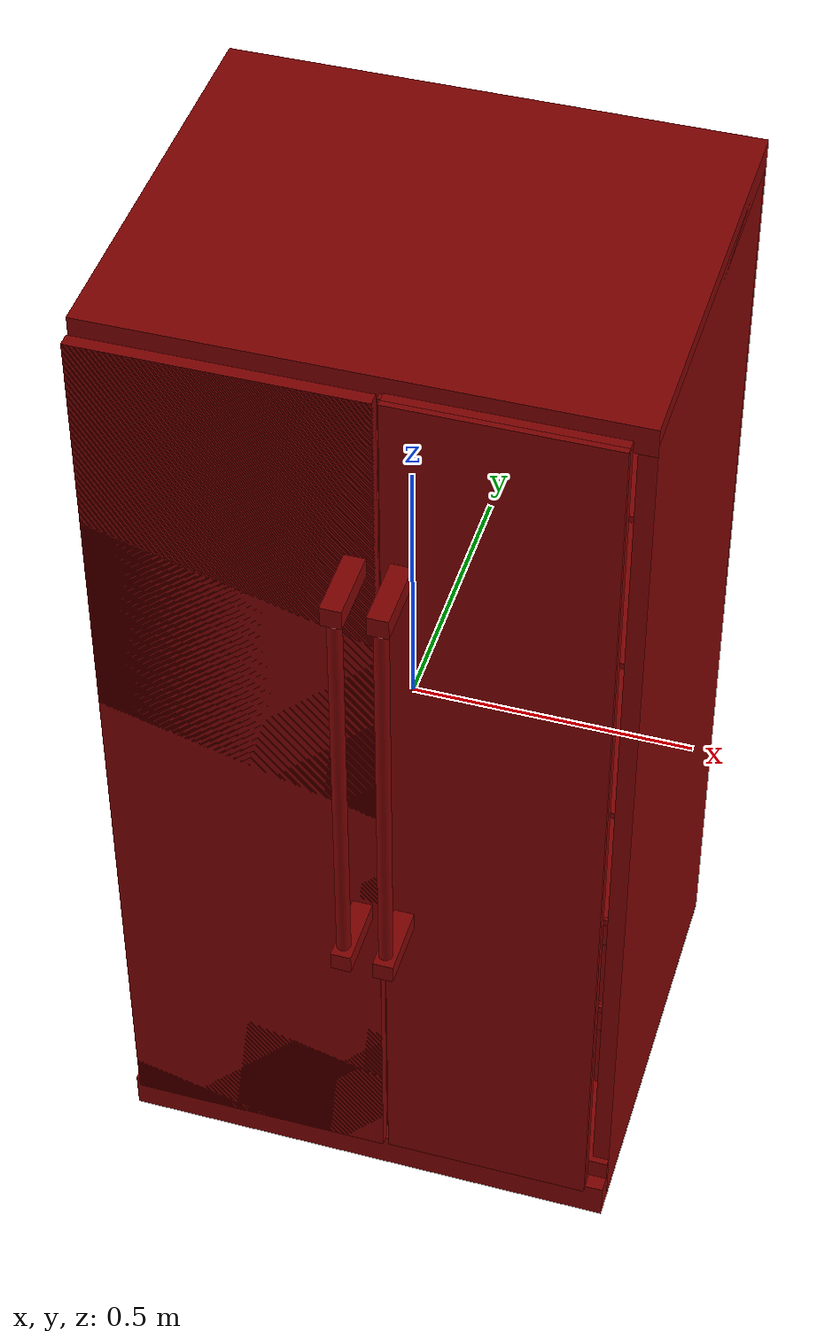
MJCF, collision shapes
<?xml version='1.0' encoding='UTF-8'?>
<mujoco model="model">
  <option timestep="0.002" gravity="0.0 0.0 -9.81"/>
  <compiler angle="radian"/>
  <asset>
    <mesh file="visuals/freezer_door.obj" name="freezer_door_vis"/>
    <mesh file="visuals/freezer_drawer0.obj" name="freezer_drawer0_vis"/>
    <mesh file="visuals/freezer_drawer1.obj" name="freezer_drawer1_vis"/>
    <mesh file="visuals/fridge_door.obj" name="fridge_door_vis"/>
    <mesh file="visuals/fridge_door_Clear.obj" name="fridge_door_Clear_vis"/>
    <mesh file="visuals/Body001.obj" name="Body001_vis"/>
    <mesh file="visuals/Body001_Clear.obj" name="Body001_Clear_vis"/>
    <mesh file="visuals/Body002.obj" name="Body002_vis"/>
    <texture file="visuals/T_BC001.png" name="Body001_material" type="2d"/>
    <material name="Body001_material" rgba="1 1 1 1.0" texture="Body001_material" shininess="0.4291412830352783" specular="2"/>
    <texture file="visuals/T_BC001.png" name="freezer_door_material" type="2d"/>
    <material name="freezer_door_material" rgba="1 1 1 1.0" texture="freezer_door_material" shininess="0.4291412830352783" specular="2"/>
    <texture file="visuals/T_BC001.png" name="freezer_drawer0_material" type="2d"/>
    <material name="freezer_drawer0_material" rgba="1 1 1 1.0" texture="freezer_drawer0_material" shininess="0.4291412830352783" specular="0.3103448502657381"/>
    <texture file="visuals/T_BC001.png" name="freezer_drawer1_material" type="2d"/>
    <material name="freezer_drawer1_material" rgba="1 1 1 1.0" texture="freezer_drawer1_material" shininess="0.4291412830352783" specular="0.3103448502657381"/>
    <texture file="visuals/T_BC001.png" name="fridge_door_material" type="2d"/>
    <material name="fridge_door_material" rgba="1 1 1 1.0" texture="fridge_door_material" shininess="0.4291412830352783" specular="2"/>
    <material name="fridge_door_Clear_material" rgba="0.5 0.5 0.5 0.7409640550613403" shininess="0.4472135901451111" specular="0.3103448502657381"/>
    <material name="Body001_Clear_material" rgba="0.5 0.5 0.5 0.7409640550613403" shininess="0.4472135901451111" specular="0.3103448502657381"/>
    <texture file="visuals/T_BC001.png" name="Body002_material" type="2d"/>
    <material name="Body002_material" rgba="1 1 1 1.0" texture="Body002_material" shininess="0.4291412830352783" specular="0.3103448502657381"/>
  </asset>
  <default>
    <default class="visual">
      <geom conaffinity="0" contype="0" group="1" type="mesh"/>
    </default>
    <default class="collision">
      <geom group="0" rgba="0.5 0 0 0.5"/>
    </default>
    <default class="spawn">
      <geom group="0" rgba="1 1 1 0.5" contype="0" conaffinity="0"/>
      <site group="0" rgba="1 1 1 0.5"/>
    </default>
    <default class="region">
      <geom group="1" conaffinity="0" contype="0" rgba="0 1 0 0"/>
    </default>
  </default>
  <worldbody>
    <body>
      <body name="object">
        <geom mesh="Body001_vis" type="mesh" solimp="0.998 0.998 0.001" solref="0.001 1" friction="0.95 0.3 0.1" class="visual" material="Body001_material"/>
        <geom class="collision" type="box" pos="-3.14321368932724e-09 0.4564071595668793 -0.009512280113995075" size="0.4595121145248413 0.01243121363222599 0.890364944934845" quat="1.0 0.0 0.0 0.0"/>
        <geom class="collision" type="box" pos="-0.44824686646461487 0.09380289912223816 -0.018721602857112885" size="0.011265265755355358 0.37500715255737305 0.9253760576248169" quat="1.0 0.0 0.0 0.0"/>
        <geom class="collision" type="box" pos="0.4442569613456726 0.09380240738391876 -0.01872161403298378" size="0.015255171805620193 0.3750080466270447 0.9253787994384766" quat="1.0 0.0 0.0 0.0"/>
        <geom class="collision" type="box" pos="-3.14321368932724e-09 0.08787217736244202 -0.8941758275032043" size="0.4595121145248413 0.38093873858451843 0.05846454203128815" quat="1.0 0.0 0.0 0.0"/>
        <geom class="collision" type="box" pos="-3.14321368932724e-09 0.02809373289346695 -0.9153845310211182" size="0.4595121145248413 0.3492131531238556 0.03692387044429779" quat="1.0 0.0 0.0 0.0"/>
        <geom class="collision" type="box" pos="0.07116194069385529 0.08771630376577377 -0.018721602857112885" size="0.0370812825858593 0.3810955286026001 0.9253871440887451" quat="1.0 0.0 0.0 0.0"/>
        <geom class="collision" type="box" pos="-3.14321368932724e-09 0.09380055218935013 0.9125056266784668" size="0.4595121145248413 0.37501177191734314 0.025864657014608383" quat="1.0 0.0 0.0 0.0"/>
        <geom class="collision" type="box" pos="0.2683153450489044 0.16216318309307098 0.22448477149009705" size="0.1583569496870041 0.22307993471622467 0.0060075754299759865" quat="1.0 0.0 0.0 0.0"/>
        <geom class="collision" type="box" pos="-0.20137891173362732 0.1622304469347 0.5440387725830078" size="0.23340408504009247 0.22307993471622467 0.0060075754299759865" quat="1.0 0.0 0.0 0.0"/>
        <geom class="collision" type="box" pos="-0.20145899057388306 0.15250565111637115 0.22739364206790924" size="0.23340408504009247 0.22307993471622467 0.0060075754299759865" quat="1.0 0.0 0.0 0.0"/>
        <geom class="collision" type="box" pos="0.2683153450489044 0.16216318309307098 0.553250789642334" size="0.1583569496870041 0.22307993471622467 0.006352466065436602" quat="1.0 0.0 0.0 0.0"/>
        <geom class="collision" type="box" pos="0.2683153450489044 0.16216318309307098 -0.14524586498737335" size="0.1583569496870041 0.22307993471622467 0.006224427837878466" quat="1.0 0.0 0.0 0.0"/>
        <geom class="collision" type="box" pos="-0.20145899057388306 0.16216318309307098 -0.14820696413516998" size="0.23340408504009247 0.22307993471622467 0.0060075754299759865" quat="1.0 0.0 0.0 0.0"/>
        <geom class="collision" type="box" pos="-0.20145899057388306 0.16216318309307098 -0.4992179572582245" size="0.23340408504009247 0.22307993471622467 0.0060075754299759865" quat="1.0 0.0 0.0 0.0"/>
        <geom class="collision" type="box" pos="-0.4261056184768677 0.15014323592185974 0.5332607626914978" size="0.009552940726280212 0.2150000035762787 0.005428791046142578" quat="1.0 0.0 0.0 0.0"/>
        <geom class="collision" type="box" pos="-0.4261056184768677 0.15014323592185974 0.2121192365884781" size="0.009552940726280212 0.2150000035762787 0.005428791046142578" quat="1.0 0.0 0.0 0.0"/>
        <geom class="collision" type="box" pos="-0.4261056184768677 0.15014323592185974 -0.15938958525657654" size="0.009552940726280212 0.2150000035762787 0.005428791046142578" quat="1.0 0.0 0.0 0.0"/>
        <geom class="collision" type="box" pos="-0.4261056184768677 0.15014323592185974 -0.5178503394126892" size="0.009552940726280212 0.2150000035762787 0.005428791046142578" quat="1.0 0.0 0.0 0.0"/>
        <geom class="collision" type="box" pos="0.023374024778604507 0.15014323592185974 0.5332607626914978" size="0.009552940726280212 0.2150000035762787 0.005428791046142578" quat="1.0 0.0 0.0 0.0"/>
        <geom class="collision" type="box" pos="0.023374024778604507 0.15014323592185974 -0.5178503394126892" size="0.009552940726280212 0.2150000035762787 0.005428791046142578" quat="1.0 0.0 0.0 0.0"/>
        <geom class="collision" type="box" pos="0.023374024778604507 0.15014323592185974 -0.15938958525657654" size="0.009552940726280212 0.2150000035762787 0.005428791046142578" quat="1.0 0.0 0.0 0.0"/>
        <geom class="collision" type="box" pos="0.023374024778604507 0.15014323592185974 0.2121192365884781" size="0.009552940726280212 0.2150000035762787 0.005428791046142578" quat="1.0 0.0 0.0 0.0"/>
        <geom class="collision" type="box" pos="0.1187741607427597 0.15014323592185974 0.2121192365884781" size="0.009552940726280212 0.2150000035762787 0.005428791046142578" quat="1.0 0.0 0.0 0.0"/>
        <geom class="collision" type="box" pos="0.11876542866230011 0.15014323592185974 -0.15938958525657654" size="0.009552940726280212 0.2150000035762787 0.005428791046142578" quat="1.0 0.0 0.0 0.0"/>
        <geom class="collision" type="box" pos="0.11872856318950653 0.15014323592185974 0.539370596408844" size="0.009552940726280212 0.2150000035762787 0.005428791046142578" quat="1.0 0.0 0.0 0.0"/>
        <geom class="collision" type="box" pos="0.11876542866230011 0.15014323592185974 -0.33065348863601685" size="0.009552940726280212 0.2150000035762787 0.005428791046142578" quat="1.0 0.0 0.0 0.0"/>
        <geom class="collision" type="box" pos="0.14763441681861877 0.15014323592185974 -0.6021625399589539" size="0.03842192888259888 0.2150000035762787 0.005190134048461914" quat="1.0 0.0 0.0 0.0"/>
        <geom class="collision" type="box" pos="0.3958284854888916 0.15014323592185974 -0.6021625399589539" size="0.03842192888259888 0.2150000035762787 0.005190134048461914" quat="1.0 0.0 0.0 0.0"/>
        <geom class="collision" type="box" pos="0.41766905784606934 0.15014323592185974 0.539370596408844" size="0.009552940726280212 0.2150000035762787 0.005428791046142578" quat="1.0 0.0 0.0 0.0"/>
        <geom class="collision" type="box" pos="0.4177058935165405 0.15014323592185974 -0.33065348863601685" size="0.009552940726280212 0.2150000035762787 0.005428791046142578" quat="1.0 0.0 0.0 0.0"/>
        <geom class="collision" type="box" pos="0.4177058935165405 0.15014323592185974 -0.15938958525657654" size="0.009552940726280212 0.2150000035762787 0.005428791046142578" quat="1.0 0.0 0.0 0.0"/>
        <geom class="collision" type="box" pos="0.4177146553993225 0.15014323592185974 0.2121192365884781" size="0.009552940726280212 0.2150000035762787 0.005428791046142578" quat="1.0 0.0 0.0 0.0"/>
        <body name="freezer_door">
          <joint axis="0.0 0.0 1.0" pos="0.43610501289367676 -0.3223499357700348 0.04106709361076355" limited="true" name="freezer_door_joint" range="0.0 1.5707963267948966" type="hinge" damping="1" frictionloss="1" armature=".01" stiffness="0.05"/>
          <geom mesh="freezer_door_vis" type="mesh" solimp="0.998 0.998 0.001" solref="0.001 1" friction="0.95 0.3 0.1" class="visual" material="freezer_door_material"/>
          <geom class="collision" type="box" pos="0.2401685267686844 -0.33090940117836 0.03962339088320732" size="0.18864116072654724 0.013930177316069603 0.9010488390922546" quat="1.0 0.0 0.0 0.0"/>
          <geom class="collision" type="cylinder" pos="0.08608739823102951 -0.4513147473335266 0.20588915050029755" size="0.012440330348908901 0.38117796182632446" quat="1.0 0.0 0.0 0.0" name="freezer_door_handle_main"/>
          <geom class="collision" type="box" pos="0.0861477330327034 -0.4070349335670471 0.6107343435287476" size="0.017865100875496864 0.06237119436264038 0.017993342131376266" quat="1.0 0.0 0.0 0.0" name="freezer_door_handle_1"/>
          <geom class="collision" type="box" pos="0.0861477330327034 -0.4070349335670471 -0.20125801861286163" size="0.017865072935819626 0.062371090054512024 0.01799328811466694" quat="1.0 0.0 0.0 0.0" name="freezer_door_handle_2"/>
          <geom class="collision" type="box" pos="0.26309067010879517 -0.29323944449424744 0.0657227635383606" size="0.13131524622440338 0.030547482892870903 0.14166350662708282" quat="1.0 0.0 0.0 0.0"/>
          <geom class="collision" type="box" pos="0.2401685267686844 -0.33941650390625 0.03962339088320732" size="0.18864376842975616 0.005423270631581545 0.9010597467422485" quat="1.0 0.0 0.0 0.0" name="freezer_door_main"/>
        </body>
        <body name="freezer_drawer0">
          <geom class="region" name="reg_freezer_drawer0" type="box" pos="0.2571055144071579 0.12074371054768562 -0.7176551520824432" size="0.12860300934314728 0.21318479797244072 0.09834752774238587"/>
          <joint axis="0.0 -1.0 0.0" pos="0.25697803497314453 0.1185639500617981 -0.7232652902603149" limited="true" name="freezer_drawer0_joint" range="0.0 0.3" type="slide" damping="1" frictionloss="1" armature=".01" stiffness="0.05"/>
          <geom mesh="freezer_drawer0_vis" type="mesh" solimp="0.998 0.998 0.001" solref="0.001 1" friction="0.95 0.3 0.1" class="visual" material="freezer_drawer0_material"/>
          <geom class="collision" type="box" pos="0.37380969524383545 -0.107892245054245 -0.6490522027015686" size="0.025263600051403046 0.003485530847683549 0.034046825021505356" quat="1.0 0.0 0.0 0.0"/>
          <geom class="collision" type="box" pos="0.1422906368970871 -0.1078922301530838 -0.6490522027015686" size="0.027409683912992477 0.0034855457488447428 0.034046825021505356" quat="1.0 0.0 0.0 0.0"/>
          <geom class="collision" type="box" pos="0.25697726011276245 -0.1078922376036644 -0.7572832703590393" size="0.14173756539821625 0.003485538298264146 0.07706958055496216" quat="1.0 0.0 0.0 0.0"/>
          <geom class="collision" type="box" pos="0.2578640282154083 -0.1085302010178566 -0.6197048425674438" size="0.14112193882465363 0.004123501013964415 0.00723676010966301" quat="1.0 0.0 0.0 0.0"/>
          <geom class="collision" type="box" pos="0.11827114224433899 0.12212059646844864 -0.722469687461853" size="0.0036440046969801188 0.22643408179283142 0.11000137031078339" quat="1.0 0.0 0.0 0.0"/>
          <geom class="collision" type="box" pos="0.39567750692367554 0.12155310809612274 -0.722469687461853" size="0.0036365410778671503 0.2263440638780594 0.1100011095404625" quat="1.0 0.0 0.0 0.0"/>
          <geom class="collision" type="box" pos="0.25688397884368896 0.12371434271335602 -0.8298110365867615" size="0.14185942709445953 0.2239290326833725 0.00454176077619195" quat="1.0 0.0 0.0 0.0"/>
          <geom class="collision" type="box" pos="0.25830942392349243 0.3449477255344391 -0.7233240008354187" size="0.14156587421894073 0.0038112641777843237 0.10914629697799683" quat="1.0 0.0 0.0 0.0"/>
        </body>
        <body name="freezer_drawer1">
          <geom class="region" name="reg_freezer_drawer1" type="box" pos="0.26943786442279816 0.11742544174194336 -0.47867536544799805" size="0.12817030942440033 0.21394045448303223 0.10610396957397461"/>
          <joint axis="0.0 -1.0 0.0" pos="0.26866528391838074 0.1185639500617981 -0.48109862208366394" limited="true" name="freezer_drawer1_joint" range="0.0 0.3" type="slide" damping="1" frictionloss="1" armature=".01" stiffness="0.05"/>
          <geom mesh="freezer_drawer1_vis" type="mesh" solimp="0.998 0.998 0.001" solref="0.001 1" friction="0.95 0.3 0.1" class="visual" material="freezer_drawer1_material"/>
          <geom class="collision" type="box" pos="0.2687298059463501 0.3438568115234375 -0.4822545349597931" size="0.14216706156730652 0.004973985254764557 0.11381178349256516" quat="1.0 0.0 0.0 0.0"/>
          <geom class="collision" type="box" pos="0.2678871750831604 0.11431354284286499 -0.5931795239448547" size="0.14122454822063446 0.22387142479419708 0.0028868159279227257" quat="1.0 0.0 0.0 0.0"/>
          <geom class="collision" type="box" pos="0.40752801299095154 0.11687353998422623 -0.4799943268299103" size="0.003799821948632598 0.2216975837945938 0.11326070129871368" quat="1.0 0.0 0.0 0.0"/>
          <geom class="collision" type="box" pos="0.12986460328102112 0.1167067289352417 -0.4799943268299103" size="0.0037377718836069107 0.22153130173683167 0.11326095461845398" quat="1.0 0.0 0.0 0.0"/>
          <geom class="collision" type="box" pos="0.2690414786338806 -0.10794223845005035 -0.3739698529243469" size="0.1429389864206314 0.003535526804625988 0.00723676010966301" quat="1.0 0.0 0.0 0.0"/>
          <geom class="collision" type="box" pos="0.2690414786338806 -0.1078922376036644 -0.5152724981307983" size="0.1429389864206314 0.003485538298264146 0.08079381287097931" quat="1.0 0.0 0.0 0.0"/>
          <geom class="collision" type="box" pos="0.1525816023349762 -0.10789225250482559 -0.4033172130584717" size="0.026479121297597885 0.003485523397102952 0.034046825021505356" quat="1.0 0.0 0.0 0.0"/>
          <geom class="collision" type="box" pos="0.3843856453895569 -0.107892245054245 -0.4033172130584717" size="0.026479121297597885 0.003485530847683549 0.034046825021505356" quat="1.0 0.0 0.0 0.0"/>
        </body>
        <body name="fridge_door">
          <joint axis="0.0 0.0 -1.0" pos="-0.4357980489730835 -0.3228433430194855 0.04106411337852478" limited="true" name="fridge_door_joint" range="0.0 1.5707963267948966" type="hinge" damping="1" frictionloss="1" armature=".01" stiffness="0.05"/>
          <geom mesh="fridge_door_vis" type="mesh" solimp="0.998 0.998 0.001" solref="0.001 1" friction="0.95 0.3 0.1" class="visual" material="fridge_door_material"/>
          <geom class="collision" type="box" pos="-0.20054519176483154 -0.33403870463371277 0.038020651787519455" size="0.24239735305309296 0.0113755464553833 0.9025313258171082" quat="1.0 0.0 0.0 0.0"/>
          <geom class="collision" type="box" pos="0.011547052301466465 -0.4070349335670471 0.6107343435287476" size="0.017865154892206192 0.06237141415476799 0.01799345202744007" quat="1.0 0.0 0.0 0.0" name="fridge_door_handle_1"/>
          <geom class="collision" type="cylinder" pos="0.011486728675663471 -0.4513147473335266 0.20588915050029755" size="0.012440330348908901 0.38117796182632446" quat="1.0 0.0 0.0 0.0" name="fridge_door_handle_main"/>
          <geom class="collision" type="box" pos="0.011547052301466465 -0.4070349335670471 -0.20125801861286163" size="0.017865126952528954 0.06237130984663963 0.017993396148085594" quat="1.0 0.0 0.0 0.0" name="fridge_door_handle_2"/>
          <geom class="collision" type="box" pos="-0.20968464016914368 -0.32837197184562683 0.5243414640426636" size="0.2195482701063156 0.0032243402674794197 0.03886110335588455" quat="1.0 0.0 0.0 0.0"/>
          <geom class="collision" type="box" pos="-0.4241691827774048 -0.2773961126804352 0.5243414640426636" size="0.0051228501833975315 0.054292209446430206 0.038861196488142014" quat="1.0 0.0 0.0 0.0"/>
          <geom class="collision" type="box" pos="-0.20968464016914368 -0.2263183891773224 0.5243414640426636" size="0.21955040097236633 0.003224362852051854 0.038861289620399475" quat="1.0 0.0 0.0 0.0"/>
          <geom class="collision" type="box" pos="0.005859863478690386 -0.2773961126804352 0.5243414640426636" size="0.00512288324534893 0.05429258570075035 0.03886138275265694" quat="1.0 0.0 0.0 0.0"/>
          <geom class="collision" type="box" pos="-0.2090894877910614 -0.2773961126804352 0.48891374468803406" size="0.22007542848587036 0.054292768239974976 0.0034381297882646322" quat="1.0 0.0 0.0 0.0"/>
          <geom class="collision" type="box" pos="-0.2090894877910614 -0.27739617228507996 -0.11951662600040436" size="0.22007720172405243 0.054293155670166016 0.0034381533041596413" quat="1.0 0.0 0.0 0.0"/>
          <geom class="collision" type="box" pos="0.005859863478690386 -0.2773961126804352 -0.08408892154693604" size="0.005122944712638855 0.05429333820939064 0.03886175900697708" quat="1.0 0.0 0.0 0.0"/>
          <geom class="collision" type="box" pos="-0.20968464016914368 -0.2263183891773224 -0.08408892154693604" size="0.21955643594264984 0.0032244313042610884 0.03886185213923454" quat="1.0 0.0 0.0 0.0"/>
          <geom class="collision" type="box" pos="-0.4241691827774048 -0.2773961126804352 -0.08408892154693604" size="0.005122977774590254 0.054293710738420486 0.038861945271492004" quat="1.0 0.0 0.0 0.0"/>
          <geom class="collision" type="box" pos="-0.4241691827774048 -0.27739617228507996 -0.4777262508869171" size="0.005122994538396597 0.054293904453516006 0.038862042129039764" quat="1.0 0.0 0.0 0.0"/>
          <geom class="collision" type="box" pos="-0.20968464016914368 -0.2263183891773224 -0.4777262508869171" size="0.21955963969230652 0.003224465297535062 0.038862135261297226" quat="1.0 0.0 0.0 0.0"/>
          <geom class="collision" type="box" pos="0.005859863478690386 -0.2773961126804352 -0.4777262508869171" size="0.005123027600347996 0.054294269531965256 0.03886222839355469" quat="1.0 0.0 0.0 0.0"/>
          <geom class="collision" type="box" pos="-0.2090894877910614 -0.2773961126804352 -0.5131539106369019" size="0.22008466720581055 0.054294463247060776 0.0034382352605462074" quat="1.0 0.0 0.0 0.0"/>
          <geom class="collision" type="box" pos="-0.20968464016914368 -0.32837197184562683 -0.4777262508869171" size="0.219562828540802 0.003224499523639679 0.03886241465806961" quat="1.0 0.0 0.0 0.0"/>
          <geom class="collision" type="box" pos="-0.20054519176483154 -0.3395683467388153 0.038020651787519455" size="0.24239735305309296 0.005845919251441956 0.9025313258171082" quat="1.0 0.0 0.0 0.0" name="fridge_door_main"/>
          <body name="fridge_door_Clear">
            <geom mesh="fridge_door_Clear_vis" type="mesh" solimp="0.998 0.998 0.001" solref="0.001 1" friction="0.95 0.3 0.1" class="visual" material="fridge_door_Clear_material"/>
            <geom class="collision" type="box" pos="-0.20968464016914368 -0.32837197184562683 0.5243414640426636" size="0.2195482701063156 0.0032243402674794197 0.03886110335588455" quat="1.0 0.0 0.0 0.0"/>
            <geom class="collision" type="box" pos="-0.4241691827774048 -0.2773961126804352 0.5243414640426636" size="0.0051228501833975315 0.054292209446430206 0.038861196488142014" quat="1.0 0.0 0.0 0.0"/>
            <geom class="collision" type="box" pos="-0.20968464016914368 -0.2263183891773224 0.5243414640426636" size="0.21955040097236633 0.003224362852051854 0.038861289620399475" quat="1.0 0.0 0.0 0.0"/>
            <geom class="collision" type="box" pos="0.005859863478690386 -0.2773961126804352 0.5243414640426636" size="0.00512288324534893 0.05429258570075035 0.03886138275265694" quat="1.0 0.0 0.0 0.0"/>
            <geom class="collision" type="box" pos="-0.2090894877910614 -0.2773961126804352 0.48891374468803406" size="0.22007542848587036 0.054292768239974976 0.0034381297882646322" quat="1.0 0.0 0.0 0.0"/>
            <geom class="collision" type="box" pos="-0.2090894877910614 -0.27739617228507996 -0.11951662600040436" size="0.22007720172405243 0.054293155670166016 0.0034381533041596413" quat="1.0 0.0 0.0 0.0"/>
            <geom class="collision" type="box" pos="0.005859863478690386 -0.2773961126804352 -0.08408892154693604" size="0.005122944712638855 0.05429333820939064 0.03886175900697708" quat="1.0 0.0 0.0 0.0"/>
            <geom class="collision" type="box" pos="-0.20968464016914368 -0.2263183891773224 -0.08408892154693604" size="0.21955643594264984 0.0032244313042610884 0.03886185213923454" quat="1.0 0.0 0.0 0.0"/>
            <geom class="collision" type="box" pos="-0.4241691827774048 -0.2773961126804352 -0.08408892154693604" size="0.005122977774590254 0.054293710738420486 0.038861945271492004" quat="1.0 0.0 0.0 0.0"/>
            <geom class="collision" type="box" pos="-0.4241691827774048 -0.27739617228507996 -0.4777262508869171" size="0.005122994538396597 0.054293904453516006 0.038862042129039764" quat="1.0 0.0 0.0 0.0"/>
            <geom class="collision" type="box" pos="-0.20968464016914368 -0.2263183891773224 -0.4777262508869171" size="0.21955963969230652 0.003224465297535062 0.038862135261297226" quat="1.0 0.0 0.0 0.0"/>
            <geom class="collision" type="box" pos="0.005859863478690386 -0.2773961126804352 -0.4777262508869171" size="0.005123027600347996 0.054294269531965256 0.03886222839355469" quat="1.0 0.0 0.0 0.0"/>
            <geom class="collision" type="box" pos="-0.2090894877910614 -0.2773961126804352 -0.5131539106369019" size="0.22008466720581055 0.054294463247060776 0.0034382352605462074" quat="1.0 0.0 0.0 0.0"/>
            <geom class="collision" type="box" pos="-0.20968464016914368 -0.32837197184562683 -0.4777262508869171" size="0.219562828540802 0.003224499523639679 0.03886241465806961" quat="1.0 0.0 0.0 0.0"/>
          </body>
        </body>
        <body name="Body001_Clear">
          <geom mesh="Body001_Clear_vis" type="mesh" solimp="0.998 0.998 0.001" solref="0.001 1" friction="0.95 0.3 0.1" class="visual" material="Body001_Clear_material"/>
          <geom class="collision" type="box" pos="-0.20137891173362732 0.1622304469347 0.5440387725830078" size="0.23340408504009247 0.22307993471622467 0.0060075754299759865" quat="1.0 0.0 0.0 0.0"/>
          <geom class="collision" type="box" pos="-0.20145899057388306 0.15250565111637115 0.22739364206790924" size="0.23340408504009247 0.22307993471622467 0.0060075754299759865" quat="1.0 0.0 0.0 0.0"/>
          <geom class="collision" type="box" pos="-0.20145899057388306 0.16216318309307098 -0.14820696413516998" size="0.23340408504009247 0.22307993471622467 0.0060075754299759865" quat="1.0 0.0 0.0 0.0"/>
          <geom class="collision" type="box" pos="-0.20145899057388306 0.16216318309307098 -0.4992179572582245" size="0.23340408504009247 0.22307993471622467 0.0060075754299759865" quat="1.0 0.0 0.0 0.0"/>
        </body>
        <body name="Body002">
          <geom mesh="Body002_vis" type="mesh" solimp="0.998 0.998 0.001" solref="0.001 1" friction="0.95 0.3 0.1" class="visual" material="Body002_material"/>
        </body>
        <geom class="region" name="reg_fridge_shelf4" type="box" pos="-0.2001176541671157 0.16227233596146107 0.7175614833831787" size="0.22272912303358317 0.21679655818641186 0.15890414810180664"/>
        <geom class="region" name="reg_fridge_shelf3" type="box" pos="-0.19984643626958132 0.16270240768790245 0.3790234327316284" size="0.2245837383195758 0.2174623774588108 0.13842595911026"/>
        <geom class="region" name="reg_fridge_shelf2" type="box" pos="-0.2008656170219183 0.16275425627827644 0.03162123262882233" size="0.2241979165226221 0.21525528451800346 0.16478362476825714"/>
        <geom class="region" name="reg_fridge_shelf1" type="box" pos="-0.196994892321527 0.16167054325342178 -0.3291340842843056" size="0.22796308139711619 0.21626514738798142 0.15942702239751816"/>
        <geom class="region" name="reg_fridge_shelf0" type="box" pos="-0.19925653096288443 0.1840343251824379 -0.6781678199768066" size="0.2254375729933381 0.24867457693815231 0.149095965385437"/>
        <geom class="region" name="reg_freezer_shelf2" type="box" pos="0.2711273580789566 0.16219708882272243 0.7209077179431915" size="0.1502869406938553 0.21680022014677525 0.1547257730960846"/>
        <geom class="region" name="reg_freezer_shelf1" type="box" pos="0.2690308876335621 0.16102631017565727 0.38064904510974884" size="0.1501221897304058 0.2193239944279194 0.14451843297481537"/>
        <geom class="region" name="reg_freezer_shelf0" type="box" pos="0.26860327273607254 0.159921582788229 0.03279680758714676" size="0.14969456738233566 0.2182192670404911 0.16567874497175217"/>
        <geom class="region" name="reg_main" type="box" pos="0.0 0.061712488532066345 0.0001233220100402832" size="0.4605121145248413 0.408126784324646 0.9534351954460144"/>
      </body>
    </body>
  </worldbody>
  <actuator>
    <motor name="freezer_door_joint_actuator" joint="freezer_door_joint" gear="50"/>
    <motor name="freezer_drawer0_joint_actuator" joint="freezer_drawer0_joint" gear="50"/>
    <motor name="freezer_drawer1_joint_actuator" joint="freezer_drawer1_joint" gear="50"/>
    <motor name="fridge_door_joint_actuator" joint="fridge_door_joint" gear="50"/>
  </actuator>
</mujoco>
